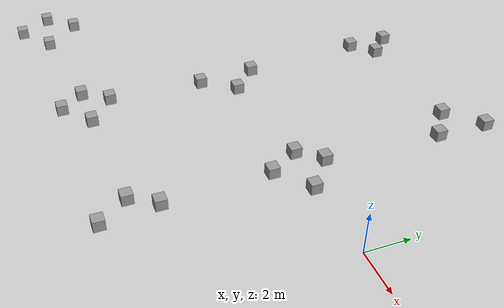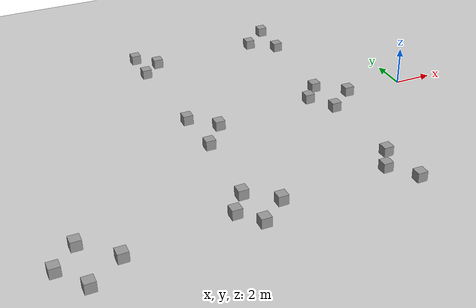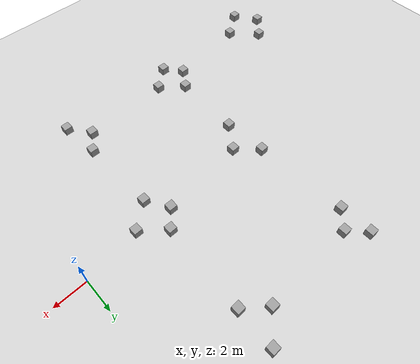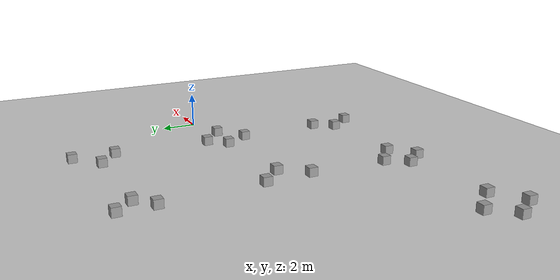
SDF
<sdf version="1.6">
 <world name="default">
  <model name="ground_plane">
   <static>1</static>
   <link name="link">
    <collision name="collision">
     <geometry><plane><normal>0 0 1</normal><size>100 100</size></plane></geometry>
     <surface>
      <contact><collide_bitmask>65535</collide_bitmask></contact>
      <friction><ode><mu>100</mu><mu2>50</mu2></ode></friction>
     </surface>
    </collision>
    <visual name="visual">
     <cast_shadows>0</cast_shadows>
     <geometry><plane><normal>0 0 1</normal><size>100 100</size></plane></geometry>
     <material>
      <script><uri>file://media/materials/scripts/gazebo.material</uri><name>Gazebo/Grey</name></script>
     </material>
    </visual>
   </link>
  </model>
  <model name="Untitled_clone_14">
   <link name="link_0">
    <inertial>
     <mass>1</mass>
     <inertia>
      <ixx>0.166667</ixx>
      <ixy>0</ixy>
      <ixz>0</ixz>
      <iyy>0.166667</iyy>
      <iyz>0</iyz>
      <izz>0.166667</izz>
     </inertia>
    </inertial>
    <visual name="visual">
     <geometry><box><size>0.5 0.5 0.5</size></box></geometry>
     <material>
      <lighting>1</lighting>
      <script><uri>file://media/materials/scripts/gazebo.material</uri><name>Gazebo/Grey</name></script>
      <shader type="vertex"><normal_map>__default__</normal_map></shader>
      <ambient>0 0 0 1</ambient>
      <diffuse>0 0 0 1</diffuse>
      <specular>0 0 0 1</specular>
      <emissive>0 0 0 1</emissive>
     </material>
    </visual>
    <collision name="collision">
     <geometry><box><size>0.5 0.5 0.5</size></box></geometry>
     <surface>
      <friction>
       <ode><mu>1</mu><mu2>1</mu2><fdir1>0 0 0</fdir1><slip1>0</slip1><slip2>0</slip2></ode>
       <torsional>
        <coefficient>1</coefficient>
        <patch_radius>0</patch_radius>
        <surface_radius>0</surface_radius>
        <use_patch_radius>1</use_patch_radius>
        <ode><slip>0</slip></ode>
       </torsional>
      </friction>
      <bounce><restitution_coefficient>0</restitution_coefficient><threshold>1e+06</threshold></bounce>
      <contact>
       <collide_without_contact>0</collide_without_contact>
       <collide_without_contact_bitmask>1</collide_without_contact_bitmask>
       <collide_bitmask>1</collide_bitmask>
       <ode>
        <soft_cfm>0</soft_cfm>
        <soft_erp>0.2</soft_erp>
        <kp>1e+13</kp>
        <kd>1</kd>
        <max_vel>0.01</max_vel>
        <min_depth>0</min_depth>
       </ode>
       <bullet>
        <split_impulse>1</split_impulse>
        <split_impulse_penetration_threshold>-0.01</split_impulse_penetration_threshold>
        <soft_cfm>0</soft_cfm>
        <soft_erp>0.2</soft_erp>
        <kp>1e+13</kp>
        <kd>1</kd>
       </bullet>
      </contact>
     </surface>
    </collision>
   </link>
   <static>0</static>
   <pose>-4.49879 8.55763 0.5 0 -0 0</pose>
  </model>
  <model name="Untitled_clone_15">
   <link name="link_0">
    <inertial>
     <mass>1</mass>
     <inertia>
      <ixx>0.166667</ixx>
      <ixy>0</ixy>
      <ixz>0</ixz>
      <iyy>0.166667</iyy>
      <iyz>0</iyz>
      <izz>0.166667</izz>
     </inertia>
    </inertial>
    <visual name="visual">
     <geometry><box><size>0.5 0.5 0.5</size></box></geometry>
     <material>
      <lighting>1</lighting>
      <script><uri>file://media/materials/scripts/gazebo.material</uri><name>Gazebo/Grey</name></script>
      <shader type="vertex"><normal_map>__default__</normal_map></shader>
      <ambient>0 0 0 1</ambient>
      <diffuse>0 0 0 1</diffuse>
      <specular>0 0 0 1</specular>
      <emissive>0 0 0 1</emissive>
     </material>
    </visual>
    <collision name="collision">
     <geometry><box><size>0.5 0.5 0.5</size></box></geometry>
     <surface>
      <friction>
       <ode><mu>1</mu><mu2>1</mu2><fdir1>0 0 0</fdir1><slip1>0</slip1><slip2>0</slip2></ode>
       <torsional>
        <coefficient>1</coefficient>
        <patch_radius>0</patch_radius>
        <surface_radius>0</surface_radius>
        <use_patch_radius>1</use_patch_radius>
        <ode><slip>0</slip></ode>
       </torsional>
      </friction>
      <bounce><restitution_coefficient>0</restitution_coefficient><threshold>1e+06</threshold></bounce>
      <contact>
       <collide_without_contact>0</collide_without_contact>
       <collide_without_contact_bitmask>1</collide_without_contact_bitmask>
       <collide_bitmask>1</collide_bitmask>
       <ode>
        <soft_cfm>0</soft_cfm>
        <soft_erp>0.2</soft_erp>
        <kp>1e+13</kp>
        <kd>1</kd>
        <max_vel>0.01</max_vel>
        <min_depth>0</min_depth>
       </ode>
       <bullet>
        <split_impulse>1</split_impulse>
        <split_impulse_penetration_threshold>-0.01</split_impulse_penetration_threshold>
        <soft_cfm>0</soft_cfm>
        <soft_erp>0.2</soft_erp>
        <kp>1e+13</kp>
        <kd>1</kd>
       </bullet>
      </contact>
     </surface>
    </collision>
   </link>
   <static>0</static>
   <pose>-4.57857 6.21641 0.5 0 -0 0</pose>
  </model>
  <model name="Untitled_clone_16">
   <link name="link_0">
    <inertial>
     <mass>1</mass>
     <inertia>
      <ixx>0.166667</ixx>
      <ixy>0</ixy>
      <ixz>0</ixz>
      <iyy>0.166667</iyy>
      <iyz>0</iyz>
      <izz>0.166667</izz>
     </inertia>
    </inertial>
    <visual name="visual">
     <geometry><box><size>0.5 0.5 0.5</size></box></geometry>
     <material>
      <lighting>1</lighting>
      <script><uri>file://media/materials/scripts/gazebo.material</uri><name>Gazebo/Grey</name></script>
      <shader type="vertex"><normal_map>__default__</normal_map></shader>
      <ambient>0 0 0 1</ambient>
      <diffuse>0 0 0 1</diffuse>
      <specular>0 0 0 1</specular>
      <emissive>0 0 0 1</emissive>
     </material>
    </visual>
    <collision name="collision">
     <geometry><box><size>0.5 0.5 0.5</size></box></geometry>
     <surface>
      <friction>
       <ode><mu>1</mu><mu2>1</mu2><fdir1>0 0 0</fdir1><slip1>0</slip1><slip2>0</slip2></ode>
       <torsional>
        <coefficient>1</coefficient>
        <patch_radius>0</patch_radius>
        <surface_radius>0</surface_radius>
        <use_patch_radius>1</use_patch_radius>
        <ode><slip>0</slip></ode>
       </torsional>
      </friction>
      <bounce><restitution_coefficient>0</restitution_coefficient><threshold>1e+06</threshold></bounce>
      <contact>
       <collide_without_contact>0</collide_without_contact>
       <collide_without_contact_bitmask>1</collide_without_contact_bitmask>
       <collide_bitmask>1</collide_bitmask>
       <ode>
        <soft_cfm>0</soft_cfm>
        <soft_erp>0.2</soft_erp>
        <kp>1e+13</kp>
        <kd>1</kd>
        <max_vel>0.01</max_vel>
        <min_depth>0</min_depth>
       </ode>
       <bullet>
        <split_impulse>1</split_impulse>
        <split_impulse_penetration_threshold>-0.01</split_impulse_penetration_threshold>
        <soft_cfm>0</soft_cfm>
        <soft_erp>0.2</soft_erp>
        <kp>1e+13</kp>
        <kd>1</kd>
       </bullet>
      </contact>
     </surface>
    </collision>
   </link>
   <static>0</static>
   <pose>-5.88836 7.23393 0.5 0 -0 0</pose>
  </model>
  <model name="Untitled_clone_18">
   <link name="link_0">
    <inertial>
     <mass>1</mass>
     <inertia>
      <ixx>0.166667</ixx>
      <ixy>0</ixy>
      <ixz>0</ixz>
      <iyy>0.166667</iyy>
      <iyz>0</iyz>
      <izz>0.166667</izz>
     </inertia>
    </inertial>
    <visual name="visual">
     <geometry><box><size>0.5 0.5 0.5</size></box></geometry>
     <material>
      <lighting>1</lighting>
      <script><uri>file://media/materials/scripts/gazebo.material</uri><name>Gazebo/Grey</name></script>
      <shader type="vertex"><normal_map>__default__</normal_map></shader>
      <ambient>0 0 0 1</ambient>
      <diffuse>0 0 0 1</diffuse>
      <specular>0 0 0 1</specular>
      <emissive>0 0 0 1</emissive>
     </material>
    </visual>
    <collision name="collision">
     <geometry><box><size>0.5 0.5 0.5</size></box></geometry>
     <surface>
      <friction>
       <ode><mu>1</mu><mu2>1</mu2><fdir1>0 0 0</fdir1><slip1>0</slip1><slip2>0</slip2></ode>
       <torsional>
        <coefficient>1</coefficient>
        <patch_radius>0</patch_radius>
        <surface_radius>0</surface_radius>
        <use_patch_radius>1</use_patch_radius>
        <ode><slip>0</slip></ode>
       </torsional>
      </friction>
      <bounce><restitution_coefficient>0</restitution_coefficient><threshold>1e+06</threshold></bounce>
      <contact>
       <collide_without_contact>0</collide_without_contact>
       <collide_without_contact_bitmask>1</collide_without_contact_bitmask>
       <collide_bitmask>1</collide_bitmask>
       <ode>
        <soft_cfm>0</soft_cfm>
        <soft_erp>0.2</soft_erp>
        <kp>1e+13</kp>
        <kd>1</kd>
        <max_vel>0.01</max_vel>
        <min_depth>0</min_depth>
       </ode>
       <bullet>
        <split_impulse>1</split_impulse>
        <split_impulse_penetration_threshold>-0.01</split_impulse_penetration_threshold>
        <soft_cfm>0</soft_cfm>
        <soft_erp>0.2</soft_erp>
        <kp>1e+13</kp>
        <kd>1</kd>
       </bullet>
      </contact>
     </surface>
    </collision>
   </link>
   <static>0</static>
   <pose>-4.8517 0.826491 0.5 0 -0 0</pose>
  </model>
  <model name="Untitled_clone_19">
   <link name="link_0">
    <inertial>
     <mass>1</mass>
     <inertia>
      <ixx>0.166667</ixx>
      <ixy>0</ixy>
      <ixz>0</ixz>
      <iyy>0.166667</iyy>
      <iyz>0</iyz>
      <izz>0.166667</izz>
     </inertia>
    </inertial>
    <visual name="visual">
     <geometry><box><size>0.5 0.5 0.5</size></box></geometry>
     <material>
      <lighting>1</lighting>
      <script><uri>file://media/materials/scripts/gazebo.material</uri><name>Gazebo/Grey</name></script>
      <shader type="vertex"><normal_map>__default__</normal_map></shader>
      <ambient>0 0 0 1</ambient>
      <diffuse>0 0 0 1</diffuse>
      <specular>0 0 0 1</specular>
      <emissive>0 0 0 1</emissive>
     </material>
    </visual>
    <collision name="collision">
     <geometry><box><size>0.5 0.5 0.5</size></box></geometry>
     <surface>
      <friction>
       <ode><mu>1</mu><mu2>1</mu2><fdir1>0 0 0</fdir1><slip1>0</slip1><slip2>0</slip2></ode>
       <torsional>
        <coefficient>1</coefficient>
        <patch_radius>0</patch_radius>
        <surface_radius>0</surface_radius>
        <use_patch_radius>1</use_patch_radius>
        <ode><slip>0</slip></ode>
       </torsional>
      </friction>
      <bounce><restitution_coefficient>0</restitution_coefficient><threshold>1e+06</threshold></bounce>
      <contact>
       <collide_without_contact>0</collide_without_contact>
       <collide_without_contact_bitmask>1</collide_without_contact_bitmask>
       <collide_bitmask>1</collide_bitmask>
       <ode>
        <soft_cfm>0</soft_cfm>
        <soft_erp>0.2</soft_erp>
        <kp>1e+13</kp>
        <kd>1</kd>
        <max_vel>0.01</max_vel>
        <min_depth>0</min_depth>
       </ode>
       <bullet>
        <split_impulse>1</split_impulse>
        <split_impulse_penetration_threshold>-0.01</split_impulse_penetration_threshold>
        <soft_cfm>0</soft_cfm>
        <soft_erp>0.2</soft_erp>
        <kp>1e+13</kp>
        <kd>1</kd>
       </bullet>
      </contact>
     </surface>
    </collision>
   </link>
   <static>0</static>
   <pose>-4.86762 -1.53803 0.5 0 -0 0</pose>
  </model>
  <model name="Untitled_clone_20">
   <link name="link_0">
    <inertial>
     <mass>1</mass>
     <inertia>
      <ixx>0.166667</ixx>
      <ixy>0</ixy>
      <ixz>0</ixz>
      <iyy>0.166667</iyy>
      <iyz>0</iyz>
      <izz>0.166667</izz>
     </inertia>
    </inertial>
    <visual name="visual">
     <geometry><box><size>0.5 0.5 0.5</size></box></geometry>
     <material>
      <lighting>1</lighting>
      <script><uri>file://media/materials/scripts/gazebo.material</uri><name>Gazebo/Grey</name></script>
      <shader type="vertex"><normal_map>__default__</normal_map></shader>
      <ambient>0 0 0 1</ambient>
      <diffuse>0 0 0 1</diffuse>
      <specular>0 0 0 1</specular>
      <emissive>0 0 0 1</emissive>
     </material>
    </visual>
    <collision name="collision">
     <geometry><box><size>0.5 0.5 0.5</size></box></geometry>
     <surface>
      <friction>
       <ode><mu>1</mu><mu2>1</mu2><fdir1>0 0 0</fdir1><slip1>0</slip1><slip2>0</slip2></ode>
       <torsional>
        <coefficient>1</coefficient>
        <patch_radius>0</patch_radius>
        <surface_radius>0</surface_radius>
        <use_patch_radius>1</use_patch_radius>
        <ode><slip>0</slip></ode>
       </torsional>
      </friction>
      <bounce><restitution_coefficient>0</restitution_coefficient><threshold>1e+06</threshold></bounce>
      <contact>
       <collide_without_contact>0</collide_without_contact>
       <collide_without_contact_bitmask>1</collide_without_contact_bitmask>
       <collide_bitmask>1</collide_bitmask>
       <ode>
        <soft_cfm>0</soft_cfm>
        <soft_erp>0.2</soft_erp>
        <kp>1e+13</kp>
        <kd>1</kd>
        <max_vel>0.01</max_vel>
        <min_depth>0</min_depth>
       </ode>
       <bullet>
        <split_impulse>1</split_impulse>
        <split_impulse_penetration_threshold>-0.01</split_impulse_penetration_threshold>
        <soft_cfm>0</soft_cfm>
        <soft_erp>0.2</soft_erp>
        <kp>1e+13</kp>
        <kd>1</kd>
       </bullet>
      </contact>
     </surface>
    </collision>
   </link>
   <static>0</static>
   <pose>-3.43393 -0.339159 0.5 0 -0 0</pose>
  </model>
  <model name="Untitled_clone_21">
   <link name="link_0">
    <inertial>
     <mass>1</mass>
     <inertia>
      <ixx>0.166667</ixx>
      <ixy>0</ixy>
      <ixz>0</ixz>
      <iyy>0.166667</iyy>
      <iyz>0</iyz>
      <izz>0.166667</izz>
     </inertia>
    </inertial>
    <visual name="visual">
     <geometry><box><size>0.5 0.5 0.5</size></box></geometry>
     <material>
      <lighting>1</lighting>
      <script><uri>file://media/materials/scripts/gazebo.material</uri><name>Gazebo/Grey</name></script>
      <shader type="vertex"><normal_map>__default__</normal_map></shader>
      <ambient>0 0 0 1</ambient>
      <diffuse>0 0 0 1</diffuse>
      <specular>0 0 0 1</specular>
      <emissive>0 0 0 1</emissive>
     </material>
    </visual>
    <collision name="collision">
     <geometry><box><size>0.5 0.5 0.5</size></box></geometry>
     <surface>
      <friction>
       <ode><mu>1</mu><mu2>1</mu2><fdir1>0 0 0</fdir1><slip1>0</slip1><slip2>0</slip2></ode>
       <torsional>
        <coefficient>1</coefficient>
        <patch_radius>0</patch_radius>
        <surface_radius>0</surface_radius>
        <use_patch_radius>1</use_patch_radius>
        <ode><slip>0</slip></ode>
       </torsional>
      </friction>
      <bounce><restitution_coefficient>0</restitution_coefficient><threshold>1e+06</threshold></bounce>
      <contact>
       <collide_without_contact>0</collide_without_contact>
       <collide_without_contact_bitmask>1</collide_without_contact_bitmask>
       <collide_bitmask>1</collide_bitmask>
       <ode>
        <soft_cfm>0</soft_cfm>
        <soft_erp>0.2</soft_erp>
        <kp>1e+13</kp>
        <kd>1</kd>
        <max_vel>0.01</max_vel>
        <min_depth>0</min_depth>
       </ode>
       <bullet>
        <split_impulse>1</split_impulse>
        <split_impulse_penetration_threshold>-0.01</split_impulse_penetration_threshold>
        <soft_cfm>0</soft_cfm>
        <soft_erp>0.2</soft_erp>
        <kp>1e+13</kp>
        <kd>1</kd>
       </bullet>
      </contact>
     </surface>
    </collision>
   </link>
   <static>0</static>
   <pose>-5.70656 -0.179497 0.5 0 -0 0</pose>
  </model>
  <model name="Untitled_clone_22">
   <link name="link_0">
    <inertial>
     <mass>1</mass>
     <inertia>
      <ixx>0.166667</ixx>
      <ixy>0</ixy>
      <ixz>0</ixz>
      <iyy>0.166667</iyy>
      <iyz>0</iyz>
      <izz>0.166667</izz>
     </inertia>
    </inertial>
    <visual name="visual">
     <geometry><box><size>0.5 0.5 0.5</size></box></geometry>
     <material>
      <lighting>1</lighting>
      <script><uri>file://media/materials/scripts/gazebo.material</uri><name>Gazebo/Grey</name></script>
      <shader type="vertex"><normal_map>__default__</normal_map></shader>
      <ambient>0 0 0 1</ambient>
      <diffuse>0 0 0 1</diffuse>
      <specular>0 0 0 1</specular>
      <emissive>0 0 0 1</emissive>
     </material>
    </visual>
    <collision name="collision">
     <geometry><box><size>0.5 0.5 0.5</size></box></geometry>
     <surface>
      <friction>
       <ode><mu>1</mu><mu2>1</mu2><fdir1>0 0 0</fdir1><slip1>0</slip1><slip2>0</slip2></ode>
       <torsional>
        <coefficient>1</coefficient>
        <patch_radius>0</patch_radius>
        <surface_radius>0</surface_radius>
        <use_patch_radius>1</use_patch_radius>
        <ode><slip>0</slip></ode>
       </torsional>
      </friction>
      <bounce><restitution_coefficient>0</restitution_coefficient><threshold>1e+06</threshold></bounce>
      <contact>
       <collide_without_contact>0</collide_without_contact>
       <collide_without_contact_bitmask>1</collide_without_contact_bitmask>
       <collide_bitmask>1</collide_bitmask>
       <ode>
        <soft_cfm>0</soft_cfm>
        <soft_erp>0.2</soft_erp>
        <kp>1e+13</kp>
        <kd>1</kd>
        <max_vel>0.01</max_vel>
        <min_depth>0</min_depth>
       </ode>
       <bullet>
        <split_impulse>1</split_impulse>
        <split_impulse_penetration_threshold>-0.01</split_impulse_penetration_threshold>
        <soft_cfm>0</soft_cfm>
        <soft_erp>0.2</soft_erp>
        <kp>1e+13</kp>
        <kd>1</kd>
       </bullet>
      </contact>
     </surface>
    </collision>
   </link>
   <static>0</static>
   <pose>-12.5953 6.17278 0.5 0 -0 0</pose>
  </model>
  <model name="Untitled_clone_23">
   <link name="link_0">
    <inertial>
     <mass>1</mass>
     <inertia>
      <ixx>0.166667</ixx>
      <ixy>0</ixy>
      <ixz>0</ixz>
      <iyy>0.166667</iyy>
      <iyz>0</iyz>
      <izz>0.166667</izz>
     </inertia>
    </inertial>
    <visual name="visual">
     <geometry><box><size>0.5 0.5 0.5</size></box></geometry>
     <material>
      <lighting>1</lighting>
      <script><uri>file://media/materials/scripts/gazebo.material</uri><name>Gazebo/Grey</name></script>
      <shader type="vertex"><normal_map>__default__</normal_map></shader>
      <ambient>0 0 0 1</ambient>
      <diffuse>0 0 0 1</diffuse>
      <specular>0 0 0 1</specular>
      <emissive>0 0 0 1</emissive>
     </material>
    </visual>
    <collision name="collision">
     <geometry><box><size>0.5 0.5 0.5</size></box></geometry>
     <surface>
      <friction>
       <ode><mu>1</mu><mu2>1</mu2><fdir1>0 0 0</fdir1><slip1>0</slip1><slip2>0</slip2></ode>
       <torsional>
        <coefficient>1</coefficient>
        <patch_radius>0</patch_radius>
        <surface_radius>0</surface_radius>
        <use_patch_radius>1</use_patch_radius>
        <ode><slip>0</slip></ode>
       </torsional>
      </friction>
      <bounce><restitution_coefficient>0</restitution_coefficient><threshold>1e+06</threshold></bounce>
      <contact>
       <collide_without_contact>0</collide_without_contact>
       <collide_without_contact_bitmask>1</collide_without_contact_bitmask>
       <collide_bitmask>1</collide_bitmask>
       <ode>
        <soft_cfm>0</soft_cfm>
        <soft_erp>0.2</soft_erp>
        <kp>1e+13</kp>
        <kd>1</kd>
        <max_vel>0.01</max_vel>
        <min_depth>0</min_depth>
       </ode>
       <bullet>
        <split_impulse>1</split_impulse>
        <split_impulse_penetration_threshold>-0.01</split_impulse_penetration_threshold>
        <soft_cfm>0</soft_cfm>
        <soft_erp>0.2</soft_erp>
        <kp>1e+13</kp>
        <kd>1</kd>
       </bullet>
      </contact>
     </surface>
    </collision>
   </link>
   <static>0</static>
   <pose>-12.6231 8.13077 0.5 0 -0 0</pose>
  </model>
  <model name="Untitled_clone_24">
   <link name="link_0">
    <inertial>
     <mass>1</mass>
     <inertia>
      <ixx>0.166667</ixx>
      <ixy>0</ixy>
      <ixz>0</ixz>
      <iyy>0.166667</iyy>
      <iyz>0</iyz>
      <izz>0.166667</izz>
     </inertia>
    </inertial>
    <visual name="visual">
     <geometry><box><size>0.5 0.5 0.5</size></box></geometry>
     <material>
      <lighting>1</lighting>
      <script><uri>file://media/materials/scripts/gazebo.material</uri><name>Gazebo/Grey</name></script>
      <shader type="vertex"><normal_map>__default__</normal_map></shader>
      <ambient>0 0 0 1</ambient>
      <diffuse>0 0 0 1</diffuse>
      <specular>0 0 0 1</specular>
      <emissive>0 0 0 1</emissive>
     </material>
    </visual>
    <collision name="collision">
     <geometry><box><size>0.5 0.5 0.5</size></box></geometry>
     <surface>
      <friction>
       <ode><mu>1</mu><mu2>1</mu2><fdir1>0 0 0</fdir1><slip1>0</slip1><slip2>0</slip2></ode>
       <torsional>
        <coefficient>1</coefficient>
        <patch_radius>0</patch_radius>
        <surface_radius>0</surface_radius>
        <use_patch_radius>1</use_patch_radius>
        <ode><slip>0</slip></ode>
       </torsional>
      </friction>
      <bounce><restitution_coefficient>0</restitution_coefficient><threshold>1e+06</threshold></bounce>
      <contact>
       <collide_without_contact>0</collide_without_contact>
       <collide_without_contact_bitmask>1</collide_without_contact_bitmask>
       <collide_bitmask>1</collide_bitmask>
       <ode>
        <soft_cfm>0</soft_cfm>
        <soft_erp>0.2</soft_erp>
        <kp>1e+13</kp>
        <kd>1</kd>
        <max_vel>0.01</max_vel>
        <min_depth>0</min_depth>
       </ode>
       <bullet>
        <split_impulse>1</split_impulse>
        <split_impulse_penetration_threshold>-0.01</split_impulse_penetration_threshold>
        <soft_cfm>0</soft_cfm>
        <soft_erp>0.2</soft_erp>
        <kp>1e+13</kp>
        <kd>1</kd>
       </bullet>
      </contact>
     </surface>
    </collision>
   </link>
   <static>0</static>
   <pose>-11.6307 7.12715 0.5 0 -0 0</pose>
  </model>
  <model name="Untitled_clone_25">
   <link name="link_0">
    <inertial>
     <mass>1</mass>
     <inertia>
      <ixx>0.166667</ixx>
      <ixy>0</ixy>
      <ixz>0</ixz>
      <iyy>0.166667</iyy>
      <iyz>0</iyz>
      <izz>0.166667</izz>
     </inertia>
    </inertial>
    <visual name="visual">
     <geometry><box><size>0.5 0.5 0.5</size></box></geometry>
     <material>
      <lighting>1</lighting>
      <script><uri>file://media/materials/scripts/gazebo.material</uri><name>Gazebo/Grey</name></script>
      <shader type="vertex"><normal_map>__default__</normal_map></shader>
      <ambient>0 0 0 1</ambient>
      <diffuse>0 0 0 1</diffuse>
      <specular>0 0 0 1</specular>
      <emissive>0 0 0 1</emissive>
     </material>
    </visual>
    <collision name="collision">
     <geometry><box><size>0.5 0.5 0.5</size></box></geometry>
     <surface>
      <friction>
       <ode><mu>1</mu><mu2>1</mu2><fdir1>0 0 0</fdir1><slip1>0</slip1><slip2>0</slip2></ode>
       <torsional>
        <coefficient>1</coefficient>
        <patch_radius>0</patch_radius>
        <surface_radius>0</surface_radius>
        <use_patch_radius>1</use_patch_radius>
        <ode><slip>0</slip></ode>
       </torsional>
      </friction>
      <bounce><restitution_coefficient>0</restitution_coefficient><threshold>1e+06</threshold></bounce>
      <contact>
       <collide_without_contact>0</collide_without_contact>
       <collide_without_contact_bitmask>1</collide_without_contact_bitmask>
       <collide_bitmask>1</collide_bitmask>
       <ode>
        <soft_cfm>0</soft_cfm>
        <soft_erp>0.2</soft_erp>
        <kp>1e+13</kp>
        <kd>1</kd>
        <max_vel>0.01</max_vel>
        <min_depth>0</min_depth>
       </ode>
       <bullet>
        <split_impulse>1</split_impulse>
        <split_impulse_penetration_threshold>-0.01</split_impulse_penetration_threshold>
        <soft_cfm>0</soft_cfm>
        <soft_erp>0.2</soft_erp>
        <kp>1e+13</kp>
        <kd>1</kd>
       </bullet>
      </contact>
     </surface>
    </collision>
   </link>
   <static>0</static>
   <pose>-12.2747 0.46404 0.5 0 -0 0</pose>
  </model>
  <model name="Untitled_clone_26">
   <link name="link_0">
    <inertial>
     <mass>1</mass>
     <inertia>
      <ixx>0.166667</ixx>
      <ixy>0</ixy>
      <ixz>0</ixz>
      <iyy>0.166667</iyy>
      <iyz>0</iyz>
      <izz>0.166667</izz>
     </inertia>
    </inertial>
    <visual name="visual">
     <geometry><box><size>0.5 0.5 0.5</size></box></geometry>
     <material>
      <lighting>1</lighting>
      <script><uri>file://media/materials/scripts/gazebo.material</uri><name>Gazebo/Grey</name></script>
      <shader type="vertex"><normal_map>__default__</normal_map></shader>
      <ambient>0 0 0 1</ambient>
      <diffuse>0 0 0 1</diffuse>
      <specular>0 0 0 1</specular>
      <emissive>0 0 0 1</emissive>
     </material>
    </visual>
    <collision name="collision">
     <geometry><box><size>0.5 0.5 0.5</size></box></geometry>
     <surface>
      <friction>
       <ode><mu>1</mu><mu2>1</mu2><fdir1>0 0 0</fdir1><slip1>0</slip1><slip2>0</slip2></ode>
       <torsional>
        <coefficient>1</coefficient>
        <patch_radius>0</patch_radius>
        <surface_radius>0</surface_radius>
        <use_patch_radius>1</use_patch_radius>
        <ode><slip>0</slip></ode>
       </torsional>
      </friction>
      <bounce><restitution_coefficient>0</restitution_coefficient><threshold>1e+06</threshold></bounce>
      <contact>
       <collide_without_contact>0</collide_without_contact>
       <collide_without_contact_bitmask>1</collide_without_contact_bitmask>
       <collide_bitmask>1</collide_bitmask>
       <ode>
        <soft_cfm>0</soft_cfm>
        <soft_erp>0.2</soft_erp>
        <kp>1e+13</kp>
        <kd>1</kd>
        <max_vel>0.01</max_vel>
        <min_depth>0</min_depth>
       </ode>
       <bullet>
        <split_impulse>1</split_impulse>
        <split_impulse_penetration_threshold>-0.01</split_impulse_penetration_threshold>
        <soft_cfm>0</soft_cfm>
        <soft_erp>0.2</soft_erp>
        <kp>1e+13</kp>
        <kd>1</kd>
       </bullet>
      </contact>
     </surface>
    </collision>
   </link>
   <static>0</static>
   <pose>-12.1016 -2.20821 0.5 0 -0 0</pose>
  </model>
  <model name="Untitled_clone_27">
   <link name="link_0">
    <inertial>
     <mass>1</mass>
     <inertia>
      <ixx>0.166667</ixx>
      <ixy>0</ixy>
      <ixz>0</ixz>
      <iyy>0.166667</iyy>
      <iyz>0</iyz>
      <izz>0.166667</izz>
     </inertia>
    </inertial>
    <visual name="visual">
     <geometry><box><size>0.5 0.5 0.5</size></box></geometry>
     <material>
      <lighting>1</lighting>
      <script><uri>file://media/materials/scripts/gazebo.material</uri><name>Gazebo/Grey</name></script>
      <shader type="vertex"><normal_map>__default__</normal_map></shader>
      <ambient>0 0 0 1</ambient>
      <diffuse>0 0 0 1</diffuse>
      <specular>0 0 0 1</specular>
      <emissive>0 0 0 1</emissive>
     </material>
    </visual>
    <collision name="collision">
     <geometry><box><size>0.5 0.5 0.5</size></box></geometry>
     <surface>
      <friction>
       <ode><mu>1</mu><mu2>1</mu2><fdir1>0 0 0</fdir1><slip1>0</slip1><slip2>0</slip2></ode>
       <torsional>
        <coefficient>1</coefficient>
        <patch_radius>0</patch_radius>
        <surface_radius>0</surface_radius>
        <use_patch_radius>1</use_patch_radius>
        <ode><slip>0</slip></ode>
       </torsional>
      </friction>
      <bounce><restitution_coefficient>0</restitution_coefficient><threshold>1e+06</threshold></bounce>
      <contact>
       <collide_without_contact>0</collide_without_contact>
       <collide_without_contact_bitmask>1</collide_without_contact_bitmask>
       <collide_bitmask>1</collide_bitmask>
       <ode>
        <soft_cfm>0</soft_cfm>
        <soft_erp>0.2</soft_erp>
        <kp>1e+13</kp>
        <kd>1</kd>
        <max_vel>0.01</max_vel>
        <min_depth>0</min_depth>
       </ode>
       <bullet>
        <split_impulse>1</split_impulse>
        <split_impulse_penetration_threshold>-0.01</split_impulse_penetration_threshold>
        <soft_cfm>0</soft_cfm>
        <soft_erp>0.2</soft_erp>
        <kp>1e+13</kp>
        <kd>1</kd>
       </bullet>
      </contact>
     </surface>
    </collision>
   </link>
   <static>0</static>
   <pose>-11.0151 -0.719712 0.5 0 -0 0</pose>
  </model>
  <model name="Untitled_clone_40">
   <link name="link_0">
    <inertial>
     <mass>1</mass>
     <inertia>
      <ixx>0.166667</ixx>
      <ixy>0</ixy>
      <ixz>0</ixz>
      <iyy>0.166667</iyy>
      <iyz>0</iyz>
      <izz>0.166667</izz>
     </inertia>
    </inertial>
    <visual name="visual">
     <geometry><box><size>0.5 0.5 0.5</size></box></geometry>
     <material>
      <lighting>1</lighting>
      <script><uri>file://media/materials/scripts/gazebo.material</uri><name>Gazebo/Grey</name></script>
      <shader type="vertex"><normal_map>__default__</normal_map></shader>
      <ambient>0 0 0 1</ambient>
      <diffuse>0 0 0 1</diffuse>
      <specular>0 0 0 1</specular>
      <emissive>0 0 0 1</emissive>
     </material>
    </visual>
    <collision name="collision">
     <geometry><box><size>0.5 0.5 0.5</size></box></geometry>
     <surface>
      <friction>
       <ode><mu>1</mu><mu2>1</mu2><fdir1>0 0 0</fdir1><slip1>0</slip1><slip2>0</slip2></ode>
       <torsional>
        <coefficient>1</coefficient>
        <patch_radius>0</patch_radius>
        <surface_radius>0</surface_radius>
        <use_patch_radius>1</use_patch_radius>
        <ode><slip>0</slip></ode>
       </torsional>
      </friction>
      <bounce><restitution_coefficient>0</restitution_coefficient><threshold>1e+06</threshold></bounce>
      <contact>
       <collide_without_contact>0</collide_without_contact>
       <collide_without_contact_bitmask>1</collide_without_contact_bitmask>
       <collide_bitmask>1</collide_bitmask>
       <ode>
        <soft_cfm>0</soft_cfm>
        <soft_erp>0.2</soft_erp>
        <kp>1e+13</kp>
        <kd>1</kd>
        <max_vel>0.01</max_vel>
        <min_depth>0</min_depth>
       </ode>
       <bullet>
        <split_impulse>1</split_impulse>
        <split_impulse_penetration_threshold>-0.01</split_impulse_penetration_threshold>
        <soft_cfm>0</soft_cfm>
        <soft_erp>0.2</soft_erp>
        <kp>1e+13</kp>
        <kd>1</kd>
       </bullet>
      </contact>
     </surface>
    </collision>
   </link>
   <static>0</static>
   <pose>-4.69681 -6.32737 0.5 0 -0 0</pose>
  </model>
  <model name="Untitled_clone_41">
   <link name="link_0">
    <inertial>
     <mass>1</mass>
     <inertia>
      <ixx>0.166667</ixx>
      <ixy>0</ixy>
      <ixz>0</ixz>
      <iyy>0.166667</iyy>
      <iyz>0</iyz>
      <izz>0.166667</izz>
     </inertia>
    </inertial>
    <visual name="visual">
     <geometry><box><size>0.5 0.5 0.5</size></box></geometry>
     <material>
      <lighting>1</lighting>
      <script><uri>file://media/materials/scripts/gazebo.material</uri><name>Gazebo/Grey</name></script>
      <shader type="vertex"><normal_map>__default__</normal_map></shader>
      <ambient>0 0 0 1</ambient>
      <diffuse>0 0 0 1</diffuse>
      <specular>0 0 0 1</specular>
      <emissive>0 0 0 1</emissive>
     </material>
    </visual>
    <collision name="collision">
     <geometry><box><size>0.5 0.5 0.5</size></box></geometry>
     <surface>
      <friction>
       <ode><mu>1</mu><mu2>1</mu2><fdir1>0 0 0</fdir1><slip1>0</slip1><slip2>0</slip2></ode>
       <torsional>
        <coefficient>1</coefficient>
        <patch_radius>0</patch_radius>
        <surface_radius>0</surface_radius>
        <use_patch_radius>1</use_patch_radius>
        <ode><slip>0</slip></ode>
       </torsional>
      </friction>
      <bounce><restitution_coefficient>0</restitution_coefficient><threshold>1e+06</threshold></bounce>
      <contact>
       <collide_without_contact>0</collide_without_contact>
       <collide_without_contact_bitmask>1</collide_without_contact_bitmask>
       <collide_bitmask>1</collide_bitmask>
       <ode>
        <soft_cfm>0</soft_cfm>
        <soft_erp>0.2</soft_erp>
        <kp>1e+13</kp>
        <kd>1</kd>
        <max_vel>0.01</max_vel>
        <min_depth>0</min_depth>
       </ode>
       <bullet>
        <split_impulse>1</split_impulse>
        <split_impulse_penetration_threshold>-0.01</split_impulse_penetration_threshold>
        <soft_cfm>0</soft_cfm>
        <soft_erp>0.2</soft_erp>
        <kp>1e+13</kp>
        <kd>1</kd>
       </bullet>
      </contact>
     </surface>
    </collision>
   </link>
   <static>0</static>
   <pose>-5.43258 -7.48248 0.5 0 -0 0</pose>
  </model>
  <model name="Untitled_clone_42">
   <link name="link_0">
    <inertial>
     <mass>1</mass>
     <inertia>
      <ixx>0.166667</ixx>
      <ixy>0</ixy>
      <ixz>0</ixz>
      <iyy>0.166667</iyy>
      <iyz>0</iyz>
      <izz>0.166667</izz>
     </inertia>
    </inertial>
    <visual name="visual">
     <geometry><box><size>0.5 0.5 0.5</size></box></geometry>
     <material>
      <lighting>1</lighting>
      <script><uri>file://media/materials/scripts/gazebo.material</uri><name>Gazebo/Grey</name></script>
      <shader type="vertex"><normal_map>__default__</normal_map></shader>
      <ambient>0 0 0 1</ambient>
      <diffuse>0 0 0 1</diffuse>
      <specular>0 0 0 1</specular>
      <emissive>0 0 0 1</emissive>
     </material>
    </visual>
    <collision name="collision">
     <geometry><box><size>0.5 0.5 0.5</size></box></geometry>
     <surface>
      <friction>
       <ode><mu>1</mu><mu2>1</mu2><fdir1>0 0 0</fdir1><slip1>0</slip1><slip2>0</slip2></ode>
       <torsional>
        <coefficient>1</coefficient>
        <patch_radius>0</patch_radius>
        <surface_radius>0</surface_radius>
        <use_patch_radius>1</use_patch_radius>
        <ode><slip>0</slip></ode>
       </torsional>
      </friction>
      <bounce><restitution_coefficient>0</restitution_coefficient><threshold>1e+06</threshold></bounce>
      <contact>
       <collide_without_contact>0</collide_without_contact>
       <collide_without_contact_bitmask>1</collide_without_contact_bitmask>
       <collide_bitmask>1</collide_bitmask>
       <ode>
        <soft_cfm>0</soft_cfm>
        <soft_erp>0.2</soft_erp>
        <kp>1e+13</kp>
        <kd>1</kd>
        <max_vel>0.01</max_vel>
        <min_depth>0</min_depth>
       </ode>
       <bullet>
        <split_impulse>1</split_impulse>
        <split_impulse_penetration_threshold>-0.01</split_impulse_penetration_threshold>
        <soft_cfm>0</soft_cfm>
        <soft_erp>0.2</soft_erp>
        <kp>1e+13</kp>
        <kd>1</kd>
       </bullet>
      </contact>
     </surface>
    </collision>
   </link>
   <static>0</static>
   <pose>-4.44612 -8.79815 0.5 0 -0 0</pose>
  </model>
  <model name="Untitled_clone_44">
   <link name="link_0">
    <inertial>
     <mass>1</mass>
     <inertia>
      <ixx>0.166667</ixx>
      <ixy>0</ixy>
      <ixz>0</ixz>
      <iyy>0.166667</iyy>
      <iyz>0</iyz>
      <izz>0.166667</izz>
     </inertia>
    </inertial>
    <visual name="visual">
     <geometry><box><size>0.5 0.5 0.5</size></box></geometry>
     <material>
      <lighting>1</lighting>
      <script><uri>file://media/materials/scripts/gazebo.material</uri><name>Gazebo/Grey</name></script>
      <shader type="vertex"><normal_map>__default__</normal_map></shader>
      <ambient>0 0 0 1</ambient>
      <diffuse>0 0 0 1</diffuse>
      <specular>0 0 0 1</specular>
      <emissive>0 0 0 1</emissive>
     </material>
    </visual>
    <collision name="collision">
     <geometry><box><size>0.5 0.5 0.5</size></box></geometry>
     <surface>
      <friction>
       <ode><mu>1</mu><mu2>1</mu2><fdir1>0 0 0</fdir1><slip1>0</slip1><slip2>0</slip2></ode>
       <torsional>
        <coefficient>1</coefficient>
        <patch_radius>0</patch_radius>
        <surface_radius>0</surface_radius>
        <use_patch_radius>1</use_patch_radius>
        <ode><slip>0</slip></ode>
       </torsional>
      </friction>
      <bounce><restitution_coefficient>0</restitution_coefficient><threshold>1e+06</threshold></bounce>
      <contact>
       <collide_without_contact>0</collide_without_contact>
       <collide_without_contact_bitmask>1</collide_without_contact_bitmask>
       <collide_bitmask>1</collide_bitmask>
       <ode>
        <soft_cfm>0</soft_cfm>
        <soft_erp>0.2</soft_erp>
        <kp>1e+13</kp>
        <kd>1</kd>
        <max_vel>0.01</max_vel>
        <min_depth>0</min_depth>
       </ode>
       <bullet>
        <split_impulse>1</split_impulse>
        <split_impulse_penetration_threshold>-0.01</split_impulse_penetration_threshold>
        <soft_cfm>0</soft_cfm>
        <soft_erp>0.2</soft_erp>
        <kp>1e+13</kp>
        <kd>1</kd>
       </bullet>
      </contact>
     </surface>
    </collision>
   </link>
   <static>0</static>
   <pose>-12.2964 -6.60463 0.5 0 -0 0</pose>
  </model>
  <model name="Untitled_clone_45">
   <link name="link_0">
    <inertial>
     <mass>1</mass>
     <inertia>
      <ixx>0.166667</ixx>
      <ixy>0</ixy>
      <ixz>0</ixz>
      <iyy>0.166667</iyy>
      <iyz>0</iyz>
      <izz>0.166667</izz>
     </inertia>
    </inertial>
    <visual name="visual">
     <geometry><box><size>0.5 0.5 0.5</size></box></geometry>
     <material>
      <lighting>1</lighting>
      <script><uri>file://media/materials/scripts/gazebo.material</uri><name>Gazebo/Grey</name></script>
      <shader type="vertex"><normal_map>__default__</normal_map></shader>
      <ambient>0 0 0 1</ambient>
      <diffuse>0 0 0 1</diffuse>
      <specular>0 0 0 1</specular>
      <emissive>0 0 0 1</emissive>
     </material>
    </visual>
    <collision name="collision">
     <geometry><box><size>0.5 0.5 0.5</size></box></geometry>
     <surface>
      <friction>
       <ode><mu>1</mu><mu2>1</mu2><fdir1>0 0 0</fdir1><slip1>0</slip1><slip2>0</slip2></ode>
       <torsional>
        <coefficient>1</coefficient>
        <patch_radius>0</patch_radius>
        <surface_radius>0</surface_radius>
        <use_patch_radius>1</use_patch_radius>
        <ode><slip>0</slip></ode>
       </torsional>
      </friction>
      <bounce><restitution_coefficient>0</restitution_coefficient><threshold>1e+06</threshold></bounce>
      <contact>
       <collide_without_contact>0</collide_without_contact>
       <collide_without_contact_bitmask>1</collide_without_contact_bitmask>
       <collide_bitmask>1</collide_bitmask>
       <ode>
        <soft_cfm>0</soft_cfm>
        <soft_erp>0.2</soft_erp>
        <kp>1e+13</kp>
        <kd>1</kd>
        <max_vel>0.01</max_vel>
        <min_depth>0</min_depth>
       </ode>
       <bullet>
        <split_impulse>1</split_impulse>
        <split_impulse_penetration_threshold>-0.01</split_impulse_penetration_threshold>
        <soft_cfm>0</soft_cfm>
        <soft_erp>0.2</soft_erp>
        <kp>1e+13</kp>
        <kd>1</kd>
       </bullet>
      </contact>
     </surface>
    </collision>
   </link>
   <static>0</static>
   <pose>-10.8972 -7.7297 0.5 0 -0 0</pose>
  </model>
  <model name="Untitled_clone_46">
   <link name="link_0">
    <inertial>
     <mass>1</mass>
     <inertia>
      <ixx>0.166667</ixx>
      <ixy>0</ixy>
      <ixz>0</ixz>
      <iyy>0.166667</iyy>
      <iyz>0</iyz>
      <izz>0.166667</izz>
     </inertia>
    </inertial>
    <visual name="visual">
     <geometry><box><size>0.5 0.5 0.5</size></box></geometry>
     <material>
      <lighting>1</lighting>
      <script><uri>file://media/materials/scripts/gazebo.material</uri><name>Gazebo/Grey</name></script>
      <shader type="vertex"><normal_map>__default__</normal_map></shader>
      <ambient>0 0 0 1</ambient>
      <diffuse>0 0 0 1</diffuse>
      <specular>0 0 0 1</specular>
      <emissive>0 0 0 1</emissive>
     </material>
    </visual>
    <collision name="collision">
     <geometry><box><size>0.5 0.5 0.5</size></box></geometry>
     <surface>
      <friction>
       <ode><mu>1</mu><mu2>1</mu2><fdir1>0 0 0</fdir1><slip1>0</slip1><slip2>0</slip2></ode>
       <torsional>
        <coefficient>1</coefficient>
        <patch_radius>0</patch_radius>
        <surface_radius>0</surface_radius>
        <use_patch_radius>1</use_patch_radius>
        <ode><slip>0</slip></ode>
       </torsional>
      </friction>
      <bounce><restitution_coefficient>0</restitution_coefficient><threshold>1e+06</threshold></bounce>
      <contact>
       <collide_without_contact>0</collide_without_contact>
       <collide_without_contact_bitmask>1</collide_without_contact_bitmask>
       <collide_bitmask>1</collide_bitmask>
       <ode>
        <soft_cfm>0</soft_cfm>
        <soft_erp>0.2</soft_erp>
        <kp>1e+13</kp>
        <kd>1</kd>
        <max_vel>0.01</max_vel>
        <min_depth>0</min_depth>
       </ode>
       <bullet>
        <split_impulse>1</split_impulse>
        <split_impulse_penetration_threshold>-0.01</split_impulse_penetration_threshold>
        <soft_cfm>0</soft_cfm>
        <soft_erp>0.2</soft_erp>
        <kp>1e+13</kp>
        <kd>1</kd>
       </bullet>
      </contact>
     </surface>
    </collision>
   </link>
   <static>0</static>
   <pose>-12.2157 -8.83978 0.5 0 -0 0</pose>
  </model>
  <model name="Untitled_clone_47">
   <link name="link_0">
    <inertial>
     <mass>1</mass>
     <inertia>
      <ixx>0.166667</ixx>
      <ixy>0</ixy>
      <ixz>0</ixz>
      <iyy>0.166667</iyy>
      <iyz>0</iyz>
      <izz>0.166667</izz>
     </inertia>
    </inertial>
    <visual name="visual">
     <geometry><box><size>0.5 0.5 0.5</size></box></geometry>
     <material>
      <lighting>1</lighting>
      <script><uri>file://media/materials/scripts/gazebo.material</uri><name>Gazebo/Grey</name></script>
      <shader type="vertex"><normal_map>__default__</normal_map></shader>
      <ambient>0 0 0 1</ambient>
      <diffuse>0 0 0 1</diffuse>
      <specular>0 0 0 1</specular>
      <emissive>0 0 0 1</emissive>
     </material>
    </visual>
    <collision name="collision">
     <geometry><box><size>0.5 0.5 0.5</size></box></geometry>
     <surface>
      <friction>
       <ode><mu>1</mu><mu2>1</mu2><fdir1>0 0 0</fdir1><slip1>0</slip1><slip2>0</slip2></ode>
       <torsional>
        <coefficient>1</coefficient>
        <patch_radius>0</patch_radius>
        <surface_radius>0</surface_radius>
        <use_patch_radius>1</use_patch_radius>
        <ode><slip>0</slip></ode>
       </torsional>
      </friction>
      <bounce><restitution_coefficient>0</restitution_coefficient><threshold>1e+06</threshold></bounce>
      <contact>
       <collide_without_contact>0</collide_without_contact>
       <collide_without_contact_bitmask>1</collide_without_contact_bitmask>
       <collide_bitmask>1</collide_bitmask>
       <ode>
        <soft_cfm>0</soft_cfm>
        <soft_erp>0.2</soft_erp>
        <kp>1e+13</kp>
        <kd>1</kd>
        <max_vel>0.01</max_vel>
        <min_depth>0</min_depth>
       </ode>
       <bullet>
        <split_impulse>1</split_impulse>
        <split_impulse_penetration_threshold>-0.01</split_impulse_penetration_threshold>
        <soft_cfm>0</soft_cfm>
        <soft_erp>0.2</soft_erp>
        <kp>1e+13</kp>
        <kd>1</kd>
       </bullet>
      </contact>
     </surface>
    </collision>
   </link>
   <static>0</static>
   <pose>-13.0956 -7.78272 0.5 0 -0 0</pose>
  </model>
  <model name="Untitled_clone_48">
   <link name="link_0">
    <inertial>
     <mass>1</mass>
     <inertia>
      <ixx>0.166667</ixx>
      <ixy>0</ixy>
      <ixz>0</ixz>
      <iyy>0.166667</iyy>
      <iyz>0</iyz>
      <izz>0.166667</izz>
     </inertia>
    </inertial>
    <visual name="visual">
     <geometry><box><size>0.5 0.5 0.5</size></box></geometry>
     <material>
      <lighting>1</lighting>
      <script><uri>file://media/materials/scripts/gazebo.material</uri><name>Gazebo/Grey</name></script>
      <shader type="vertex"><normal_map>__default__</normal_map></shader>
      <ambient>0 0 0 1</ambient>
      <diffuse>0 0 0 1</diffuse>
      <specular>0 0 0 1</specular>
      <emissive>0 0 0 1</emissive>
     </material>
    </visual>
    <collision name="collision">
     <geometry><box><size>0.5 0.5 0.5</size></box></geometry>
     <surface>
      <friction>
       <ode><mu>1</mu><mu2>1</mu2><fdir1>0 0 0</fdir1><slip1>0</slip1><slip2>0</slip2></ode>
       <torsional>
        <coefficient>1</coefficient>
        <patch_radius>0</patch_radius>
        <surface_radius>0</surface_radius>
        <use_patch_radius>1</use_patch_radius>
        <ode><slip>0</slip></ode>
       </torsional>
      </friction>
      <bounce><restitution_coefficient>0</restitution_coefficient><threshold>1e+06</threshold></bounce>
      <contact>
       <collide_without_contact>0</collide_without_contact>
       <collide_without_contact_bitmask>1</collide_without_contact_bitmask>
       <collide_bitmask>1</collide_bitmask>
       <ode>
        <soft_cfm>0</soft_cfm>
        <soft_erp>0.2</soft_erp>
        <kp>1e+13</kp>
        <kd>1</kd>
        <max_vel>0.01</max_vel>
        <min_depth>0</min_depth>
       </ode>
       <bullet>
        <split_impulse>1</split_impulse>
        <split_impulse_penetration_threshold>-0.01</split_impulse_penetration_threshold>
        <soft_cfm>0</soft_cfm>
        <soft_erp>0.2</soft_erp>
        <kp>1e+13</kp>
        <kd>1</kd>
       </bullet>
      </contact>
     </surface>
    </collision>
   </link>
   <static>0</static>
   <pose>-19.7706 -6.95384 0.5 0 -0 0</pose>
  </model>
  <model name="Untitled_clone_49">
   <link name="link_0">
    <inertial>
     <mass>1</mass>
     <inertia>
      <ixx>0.166667</ixx>
      <ixy>0</ixy>
      <ixz>0</ixz>
      <iyy>0.166667</iyy>
      <iyz>0</iyz>
      <izz>0.166667</izz>
     </inertia>
    </inertial>
    <visual name="visual">
     <geometry><box><size>0.5 0.5 0.5</size></box></geometry>
     <material>
      <lighting>1</lighting>
      <script><uri>file://media/materials/scripts/gazebo.material</uri><name>Gazebo/Grey</name></script>
      <shader type="vertex"><normal_map>__default__</normal_map></shader>
      <ambient>0 0 0 1</ambient>
      <diffuse>0 0 0 1</diffuse>
      <specular>0 0 0 1</specular>
      <emissive>0 0 0 1</emissive>
     </material>
    </visual>
    <collision name="collision">
     <geometry><box><size>0.5 0.5 0.5</size></box></geometry>
     <surface>
      <friction>
       <ode><mu>1</mu><mu2>1</mu2><fdir1>0 0 0</fdir1><slip1>0</slip1><slip2>0</slip2></ode>
       <torsional>
        <coefficient>1</coefficient>
        <patch_radius>0</patch_radius>
        <surface_radius>0</surface_radius>
        <use_patch_radius>1</use_patch_radius>
        <ode><slip>0</slip></ode>
       </torsional>
      </friction>
      <bounce><restitution_coefficient>0</restitution_coefficient><threshold>1e+06</threshold></bounce>
      <contact>
       <collide_without_contact>0</collide_without_contact>
       <collide_without_contact_bitmask>1</collide_without_contact_bitmask>
       <collide_bitmask>1</collide_bitmask>
       <ode>
        <soft_cfm>0</soft_cfm>
        <soft_erp>0.2</soft_erp>
        <kp>1e+13</kp>
        <kd>1</kd>
        <max_vel>0.01</max_vel>
        <min_depth>0</min_depth>
       </ode>
       <bullet>
        <split_impulse>1</split_impulse>
        <split_impulse_penetration_threshold>-0.01</split_impulse_penetration_threshold>
        <soft_cfm>0</soft_cfm>
        <soft_erp>0.2</soft_erp>
        <kp>1e+13</kp>
        <kd>1</kd>
       </bullet>
      </contact>
     </surface>
    </collision>
   </link>
   <static>0</static>
   <pose>-19.8756 -9.62908 0.5 0 -0 0</pose>
  </model>
  <model name="Untitled_clone_50">
   <link name="link_0">
    <inertial>
     <mass>1</mass>
     <inertia>
      <ixx>0.166667</ixx>
      <ixy>0</ixy>
      <ixz>0</ixz>
      <iyy>0.166667</iyy>
      <iyz>0</iyz>
      <izz>0.166667</izz>
     </inertia>
    </inertial>
    <visual name="visual">
     <geometry><box><size>0.5 0.5 0.5</size></box></geometry>
     <material>
      <lighting>1</lighting>
      <script><uri>file://media/materials/scripts/gazebo.material</uri><name>Gazebo/Grey</name></script>
      <shader type="vertex"><normal_map>__default__</normal_map></shader>
      <ambient>0 0 0 1</ambient>
      <diffuse>0 0 0 1</diffuse>
      <specular>0 0 0 1</specular>
      <emissive>0 0 0 1</emissive>
     </material>
    </visual>
    <collision name="collision">
     <geometry><box><size>0.5 0.5 0.5</size></box></geometry>
     <surface>
      <friction>
       <ode><mu>1</mu><mu2>1</mu2><fdir1>0 0 0</fdir1><slip1>0</slip1><slip2>0</slip2></ode>
       <torsional>
        <coefficient>1</coefficient>
        <patch_radius>0</patch_radius>
        <surface_radius>0</surface_radius>
        <use_patch_radius>1</use_patch_radius>
        <ode><slip>0</slip></ode>
       </torsional>
      </friction>
      <bounce><restitution_coefficient>0</restitution_coefficient><threshold>1e+06</threshold></bounce>
      <contact>
       <collide_without_contact>0</collide_without_contact>
       <collide_without_contact_bitmask>1</collide_without_contact_bitmask>
       <collide_bitmask>1</collide_bitmask>
       <ode>
        <soft_cfm>0</soft_cfm>
        <soft_erp>0.2</soft_erp>
        <kp>1e+13</kp>
        <kd>1</kd>
        <max_vel>0.01</max_vel>
        <min_depth>0</min_depth>
       </ode>
       <bullet>
        <split_impulse>1</split_impulse>
        <split_impulse_penetration_threshold>-0.01</split_impulse_penetration_threshold>
        <soft_cfm>0</soft_cfm>
        <soft_erp>0.2</soft_erp>
        <kp>1e+13</kp>
        <kd>1</kd>
       </bullet>
      </contact>
     </surface>
    </collision>
   </link>
   <static>0</static>
   <pose>-18.2629 -8.47431 0.5 0 -0 0</pose>
  </model>
  <model name="Untitled_clone_51">
   <link name="link_0">
    <inertial>
     <mass>1</mass>
     <inertia>
      <ixx>0.166667</ixx>
      <ixy>0</ixy>
      <ixz>0</ixz>
      <iyy>0.166667</iyy>
      <iyz>0</iyz>
      <izz>0.166667</izz>
     </inertia>
    </inertial>
    <visual name="visual">
     <geometry><box><size>0.5 0.5 0.5</size></box></geometry>
     <material>
      <lighting>1</lighting>
      <script><uri>file://media/materials/scripts/gazebo.material</uri><name>Gazebo/Grey</name></script>
      <shader type="vertex"><normal_map>__default__</normal_map></shader>
      <ambient>0 0 0 1</ambient>
      <diffuse>0 0 0 1</diffuse>
      <specular>0 0 0 1</specular>
      <emissive>0 0 0 1</emissive>
     </material>
    </visual>
    <collision name="collision">
     <geometry><box><size>0.5 0.5 0.5</size></box></geometry>
     <surface>
      <friction>
       <ode><mu>1</mu><mu2>1</mu2><fdir1>0 0 0</fdir1><slip1>0</slip1><slip2>0</slip2></ode>
       <torsional>
        <coefficient>1</coefficient>
        <patch_radius>0</patch_radius>
        <surface_radius>0</surface_radius>
        <use_patch_radius>1</use_patch_radius>
        <ode><slip>0</slip></ode>
       </torsional>
      </friction>
      <bounce><restitution_coefficient>0</restitution_coefficient><threshold>1e+06</threshold></bounce>
      <contact>
       <collide_without_contact>0</collide_without_contact>
       <collide_without_contact_bitmask>1</collide_without_contact_bitmask>
       <collide_bitmask>1</collide_bitmask>
       <ode>
        <soft_cfm>0</soft_cfm>
        <soft_erp>0.2</soft_erp>
        <kp>1e+13</kp>
        <kd>1</kd>
        <max_vel>0.01</max_vel>
        <min_depth>0</min_depth>
       </ode>
       <bullet>
        <split_impulse>1</split_impulse>
        <split_impulse_penetration_threshold>-0.01</split_impulse_penetration_threshold>
        <soft_cfm>0</soft_cfm>
        <soft_erp>0.2</soft_erp>
        <kp>1e+13</kp>
        <kd>1</kd>
       </bullet>
      </contact>
     </surface>
    </collision>
   </link>
   <static>0</static>
   <pose>-20.8997 -8.20447 0.5 0 -0 0</pose>
  </model>
 </world>
</sdf>
